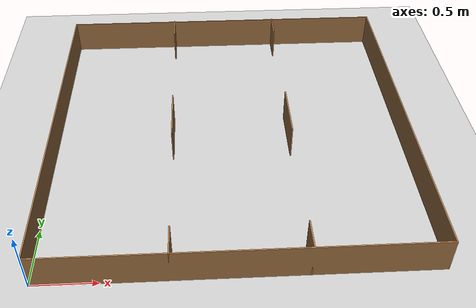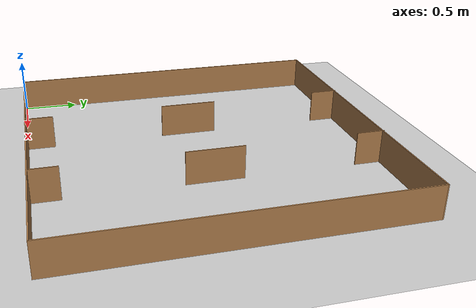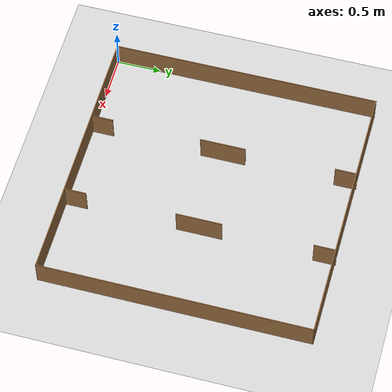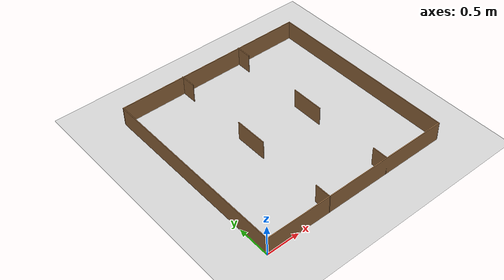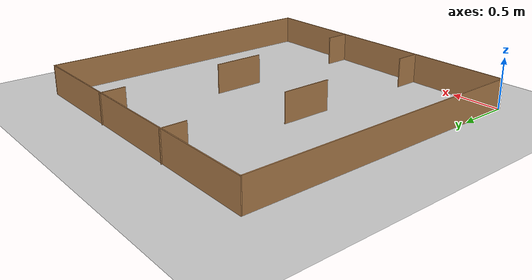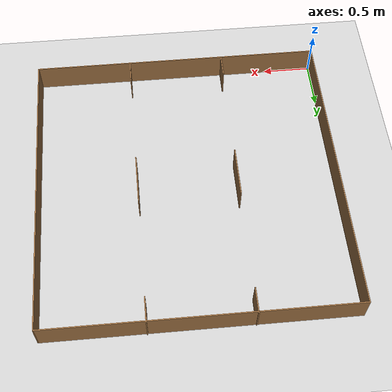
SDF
<sdf version="1.6">
 <world name="default">
  <light name="sun" type="directional">
   <pose>0 0 10 0 -0 0</pose>
   <diffuse>0.8 0.8 0.8 1</diffuse>
   <specular>0.1 0.1 0.1 1</specular>
   <attenuation>
    <range>1000</range>
    <constant>0.9</constant>
    <linear>0.01</linear>
    <quadratic>0.001</quadratic>
   </attenuation>
   <direction>-0.5 0.5 -1</direction>
  </light>
  <model name="ground_plane">
   <static>1</static>
   <link name="link">
    <collision name="collision">
     <geometry><plane><normal>0 0 1</normal><size>100 100</size></plane></geometry>
     <surface><friction><ode><mu>100</mu><mu2>50</mu2></ode></friction></surface>
    </collision>
    <visual name="visual">
     <cast_shadows>0</cast_shadows>
     <geometry><plane><normal>0 0 1</normal><size>100 100</size></plane></geometry>
     <material>
      <script><uri>file://media/materials/scripts/gazebo.material</uri><name>Gazebo/Grey</name></script>
     </material>
    </visual>
   </link>
  </model>
  <gravity>0 0 -9.8</gravity>
  <magnetic_field>6e-06 2.3e-05 -4.2e-05</magnetic_field>
  <atmosphere type="adiabatic"/>
  <physics name="default_physics" default="0" type="ode">
   <max_step_size>0.001</max_step_size>
   <real_time_factor>1</real_time_factor>
   <real_time_update_rate>1000</real_time_update_rate>
  </physics>
  <scene><ambient>0.4 0.4 0.4 1</ambient><background>0.7 0.7 0.7 1</background><shadows>1</shadows></scene>
  <spherical_coordinates>
   <surface_model>EARTH_WGS84</surface_model>
   <latitude_deg>0</latitude_deg>
   <longitude_deg>0</longitude_deg>
   <elevation>0</elevation>
   <heading_deg>0</heading_deg>
  </spherical_coordinates>
  <model name="threebythree.world">
   <pose>1.495 1.5 0 0 -0 0</pose>
   <link name="Wall_0">
    <collision name="Wall_0_Collision">
     <geometry><box><size>3 0.01 0.3</size></box></geometry>
     <pose>0 0 0.15 0 -0 0</pose>
    </collision>
    <visual name="Wall_0_Visual">
     <pose>0 0 0.15 0 -0 0</pose>
     <geometry><box><size>3 0.01 0.3</size></box></geometry>
     <material>
      <script><uri>file://media/materials/scripts/gazebo.material</uri><name>Gazebo/Wood</name></script>
      <ambient>1 1 1 1</ambient>
     </material>
    </visual>
    <pose>0 -1.5 0 0 -0 0</pose>
   </link>
   <link name="Wall_11">
    <collision name="Wall_11_Collision">
     <geometry><box><size>0.51 0.01 0.3</size></box></geometry>
     <pose>0 0 0.15 0 -0 0</pose>
    </collision>
    <visual name="Wall_11_Visual">
     <pose>0 0 0.15 0 -0 0</pose>
     <geometry><box><size>0.51 0.01 0.3</size></box></geometry>
     <material>
      <script><uri>file://media/materials/scripts/gazebo.material</uri><name>Gazebo/Wood</name></script>
      <ambient>1 1 1 1</ambient>
     </material>
    </visual>
    <pose>0.505 0 0 0 -0 1.5708</pose>
   </link>
   <link name="Wall_13">
    <collision name="Wall_13_Collision">
     <geometry><box><size>0.25 0.01 0.3</size></box></geometry>
     <pose>0 0 0.15 0 -0 0</pose>
    </collision>
    <visual name="Wall_13_Visual">
     <pose>0 0 0.15 0 -0 0</pose>
     <geometry><box><size>0.25 0.01 0.3</size></box></geometry>
     <material>
      <script><uri>file://media/materials/scripts/gazebo.material</uri><name>Gazebo/Wood</name></script>
      <ambient>1 1 1 1</ambient>
     </material>
    </visual>
    <pose>-0.495 -1.38 0 0 -0 1.5708</pose>
   </link>
   <link name="Wall_15">
    <collision name="Wall_15_Collision">
     <geometry><box><size>0.25 0.01 0.3</size></box></geometry>
     <pose>0 0 0.15 0 -0 0</pose>
    </collision>
    <visual name="Wall_15_Visual">
     <pose>0 0 0.15 0 -0 0</pose>
     <geometry><box><size>0.25 0.01 0.3</size></box></geometry>
     <material>
      <script><uri>file://media/materials/scripts/gazebo.material</uri><name>Gazebo/Wood</name></script>
      <ambient>1 1 1 1</ambient>
     </material>
    </visual>
    <pose>0.505 -1.38 0 0 -0 1.5708</pose>
   </link>
   <link name="Wall_17">
    <collision name="Wall_17_Collision">
     <geometry><box><size>0.25 0.01 0.3</size></box></geometry>
     <pose>0 0 0.15 0 -0 0</pose>
    </collision>
    <visual name="Wall_17_Visual">
     <pose>0 0 0.15 0 -0 0</pose>
     <geometry><box><size>0.25 0.01 0.3</size></box></geometry>
     <material>
      <script><uri>file://media/materials/scripts/gazebo.material</uri><name>Gazebo/Wood</name></script>
      <ambient>1 1 1 1</ambient>
     </material>
    </visual>
    <pose>-0.495 1.38 0 0 0 -1.5708</pose>
   </link>
   <link name="Wall_19">
    <collision name="Wall_19_Collision">
     <geometry><box><size>0.25 0.01 0.3</size></box></geometry>
     <pose>0 0 0.15 0 -0 0</pose>
    </collision>
    <visual name="Wall_19_Visual">
     <pose>0 0 0.15 0 -0 0</pose>
     <geometry><box><size>0.25 0.01 0.3</size></box></geometry>
     <material>
      <script><uri>file://media/materials/scripts/gazebo.material</uri><name>Gazebo/Wood</name></script>
      <ambient>1 1 1 1</ambient>
     </material>
    </visual>
    <pose>0.505 1.38 0 0 0 -1.5708</pose>
   </link>
   <link name="Wall_3">
    <collision name="Wall_3_Collision">
     <geometry><box><size>3 0.01 0.3</size></box></geometry>
     <pose>0 0 0.15 0 -0 0</pose>
    </collision>
    <visual name="Wall_3_Visual">
     <pose>0 0 0.15 0 -0 0</pose>
     <geometry><box><size>3 0.01 0.3</size></box></geometry>
     <material>
      <script><uri>file://media/materials/scripts/gazebo.material</uri><name>Gazebo/Wood</name></script>
      <ambient>1 1 1 1</ambient>
     </material>
    </visual>
    <pose>1.495 -0.005 0 0 -0 1.5708</pose>
   </link>
   <link name="Wall_5">
    <collision name="Wall_5_Collision">
     <geometry><box><size>3 0.01 0.3</size></box></geometry>
     <pose>0 0 0.15 0 -0 0</pose>
    </collision>
    <visual name="Wall_5_Visual">
     <pose>0 0 0.15 0 -0 0</pose>
     <geometry><box><size>3 0.01 0.3</size></box></geometry>
     <material>
      <script><uri>file://media/materials/scripts/gazebo.material</uri><name>Gazebo/Wood</name></script>
      <ambient>1 1 1 1</ambient>
     </material>
    </visual>
    <pose>0 1.49 0 0 -0 3.14159</pose>
   </link>
   <link name="Wall_7">
    <collision name="Wall_7_Collision">
     <geometry><box><size>3 0.01 0.3</size></box></geometry>
     <pose>0 0 0.15 0 -0 0</pose>
    </collision>
    <visual name="Wall_7_Visual">
     <pose>0 0 0.15 0 -0 0</pose>
     <geometry><box><size>3 0.01 0.3</size></box></geometry>
     <material>
      <script><uri>file://media/materials/scripts/gazebo.material</uri><name>Gazebo/Wood</name></script>
      <ambient>1 1 1 1</ambient>
     </material>
    </visual>
    <pose>-1.495 -0.005 0 0 0 -1.5708</pose>
   </link>
   <link name="Wall_9">
    <collision name="Wall_9_Collision">
     <geometry><box><size>0.51 0.01 0.3</size></box></geometry>
     <pose>0 0 0.15 0 -0 0</pose>
    </collision>
    <visual name="Wall_9_Visual">
     <pose>0 0 0.15 0 -0 0</pose>
     <geometry><box><size>0.51 0.01 0.3</size></box></geometry>
     <material>
      <script><uri>file://media/materials/scripts/gazebo.material</uri><name>Gazebo/Wood</name></script>
      <ambient>1 1 1 1</ambient>
     </material>
    </visual>
    <pose>-0.495 0 0 0 -0 1.5708</pose>
   </link>
   <static>1</static>
  </model>
 </world>
</sdf>
